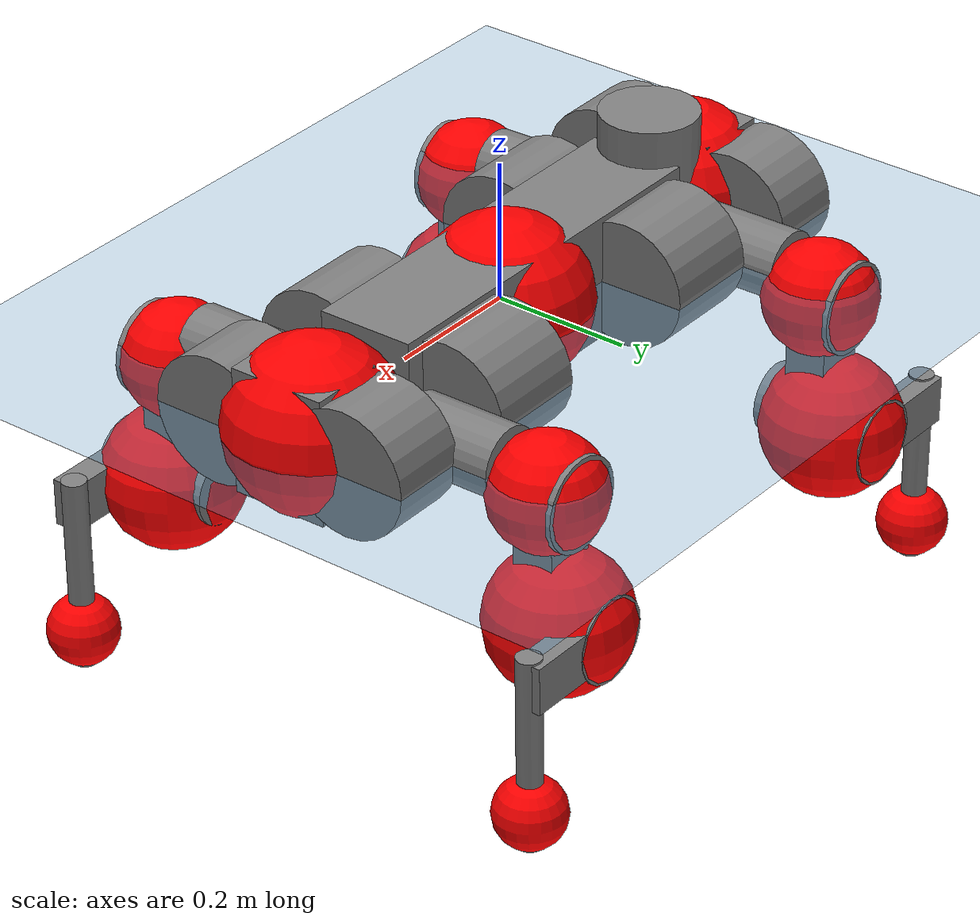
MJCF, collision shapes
<mujoco model="anymal_c">
  <compiler angle="radian" assetdir="assets" balanceinertia="true" inertiafromgeom="false"/>

  <option timestep="0.005" density="1.2" viscosity="2e-05"/>

  <size nkey="1"/>

  <visual>
    <quality shadowsize="8192"/>
    <map shadowclip="0.5"/>
  </visual>

  <default>
    <default class="/">
      <material specular="0" shininess="0.25"/>
      <geom contype="0" conaffinity="0" group="1" solref="-1000 -80"/>
      <site size="0.01 0.005 0.005" group="5"/>
      <general forcelimited="true" forcerange="-80 80" biastype="affine" gainprm="80" biasprm="0 -80 -2"/>
      <default class="anymal_c">
        <joint armature="0.01" damping="0.01" frictionloss="0.1"/>
        <default class="visual">
          <geom type="mesh" group="2"/>
          <default class="visual_zflip"/>
        </default>
        <default class="collision">
          <geom type="cylinder" group="3"/>
          <default class="foot">
            <geom size="0.03 0 0" type="sphere" condim="6" priority="1" friction="0.8 0.02 0.01" solimp="0.015 1 0.03"/>
          </default>
        </default>
      </default>
      <default class="reward_collision_sphere">
        <geom group="5" rgba="1 0 0 1"/>
      </default>
    </default>
  </default>

  <asset>
    <texture type="skybox" colorspace="auto" name="//unnamed_texture_0" builtin="gradient" rgb1="0.95 0.95 0.95" rgb2="0.95 0.95 0.95" width="100" height="600"/>
    <texture type="2d" colorspace="auto" name="texplane" builtin="checker" rgb1="0.345 0.575 0.748" rgb2="0.345 0.575 0.748" markrgb="1 1 1" width="512" height="512"/>
    <texture type="2d" colorspace="linear" name="base" file="base.png"/>
    <texture type="2d" colorspace="linear" name="top_shell" file="top_shell.png"/>
    <texture type="2d" colorspace="linear" name="bottom_shell" file="bottom_shell.png"/>
    <texture type="2d" colorspace="linear" name="remote" file="remote.png"/>
    <texture type="2d" colorspace="linear" name="hatch" file="hatch.png"/>
    <texture type="2d" colorspace="linear" name="handle" file="handle.png"/>
    <texture type="2d" colorspace="linear" name="face" file="face.png"/>
    <texture type="2d" colorspace="linear" name="battery" file="battery.png"/>
    <texture type="2d" colorspace="linear" name="lidar_cage" file="lidar_cage.png"/>
    <texture type="2d" colorspace="linear" name="depth_camera" file="depth_camera.png"/>
    <texture type="2d" colorspace="linear" name="wide_angle_camera" file="wide_angle_camera.png"/>
    <texture type="2d" colorspace="linear" name="lidar" file="lidar.png"/>
    <texture type="2d" colorspace="linear" name="drive" file="drive.png"/>
    <texture type="2d" colorspace="linear" name="hip_l" file="hip_l.png"/>
    <texture type="2d" colorspace="linear" name="shank_l" file="shank_l.png"/>
    <texture type="2d" colorspace="linear" name="foot" file="foot.png"/>
    <texture type="2d" colorspace="linear" name="thigh" file="thigh.png"/>
    <texture type="2d" colorspace="linear" name="shank_r" file="shank_r.png"/>
    <texture type="2d" colorspace="linear" name="hip_r" file="hip_r.png"/>
    <material name="MatPlane" class="/" texture="texplane" texuniform="true" texrepeat="2 2" specular="0.9" shininess="0.5"/>
    <material name="black_plastic" class="/" rgba="0.007 0.007 0.007 1"/>
    <material name="green" class="/" rgba="0.052 0.178 0.033 1"/>
    <material name="red" class="/" rgba="0.178 0.006 0.005 1"/>
    <material name="yellow" class="/" rgba="0.178 0.119 0.006 1"/>
    <material name="lwl" class="/" rgba="0.8 0.8 0.8 1"/>
    <material name="base" class="/" texture="base"/>
    <material name="top_shell" class="/" texture="top_shell"/>
    <material name="bottom_shell" class="/" texture="bottom_shell"/>
    <material name="hip_l" class="/" texture="hip_l"/>
    <material name="thigh" class="/" texture="thigh"/>
    <material name="shank_l" class="/" texture="shank_l"/>
    <material name="foot" class="/" texture="foot"/>
    <material name="hip_r" class="/" texture="hip_r"/>
    <material name="shank" class="/" texture="shank_r"/>
    <material name="hatch" class="/" texture="hatch"/>
    <material name="remote" class="/" texture="remote"/>
    <material name="handle" class="/" texture="handle"/>
    <material name="face" class="/" texture="face"/>
    <material name="depth_camera" class="/" texture="depth_camera"/>
    <material name="wide_angle_camera" class="/" texture="wide_angle_camera"/>
    <material name="battery" class="/" texture="battery"/>
    <material name="lidar_cage" class="/" texture="lidar_cage"/>
    <material name="lidar" class="/" texture="lidar"/>
    <material name="drive" class="/" texture="drive"/>
    <mesh name="base_0" class="/" file="base_0.obj"/>
    <mesh name="base_1" class="/" file="base_1.obj"/>
    <mesh name="base_2" class="/" file="base_2.obj"/>
    <mesh name="base_3" class="/" file="base_3.obj"/>
    <mesh name="base_4" class="/" file="base_4.obj"/>
    <mesh name="base_5" class="/" file="base_5.obj"/>
    <mesh name="top_shell" class="/" file="top_shell.obj"/>
    <mesh name="bottom_shell" class="/" file="bottom_shell.obj"/>
    <mesh name="remote" class="/" file="remote.obj"/>
    <mesh name="handle" class="/" file="handle.obj"/>
    <mesh name="face" class="/" file="face.obj"/>
    <mesh name="wide_angle_camera" class="/" file="wide_angle_camera.obj"/>
    <mesh name="depth_camera" class="/" file="depth_camera.obj"/>
    <mesh name="battery" class="/" file="battery.obj"/>
    <mesh name="lidar_cage" class="/" file="lidar_cage.obj"/>
    <mesh name="lidar" class="/" file="lidar.obj"/>
    <mesh name="drive" class="/" file="drive.obj"/>
    <mesh name="hip_l" class="/" file="hip_l.obj"/>
    <mesh name="thigh" class="/" file="thigh.obj"/>
    <mesh name="shank_l" class="/" file="shank_l.obj"/>
    <mesh name="foot" class="/" file="foot.obj"/>
    <mesh name="hip_r" class="/" file="hip_r.obj"/>
    <mesh name="hatch" class="/" file="hatch.obj"/>
    <mesh name="shank_r" class="/" file="shank_r.obj"/>
  </asset>

  <worldbody>
    <geom name="floor" class="/" size="100 100 0.125" type="plane" group="0" material="MatPlane"/>
    <light name="toplight_shadow" class="/" pos="0 0 5" dir="0.0990148 0.0990148 -0.990148" type="directional" ambient="0.04 0.04 0.04" diffuse="0.55 0.55 0.55" specular="0.12 0.12 0.12"/>
    <light name="toplight_fill" class="/" pos="0 0 5" dir="0.0990148 0.0990148 -0.990148" type="directional" castshadow="false" ambient="0.04 0.04 0.04" diffuse="0.3 0.3 0.3" specular="0.08 0.08 0.08"/>
    <body name="trunk" childclass="anymal_c" pos="-0.000926115 0.00863757 0.00415237" quat="0.999991 0.00171714 0.00241027 0.00318747">
      <inertial pos="0.00945386 0.013578 0.0215076" quat="0.507758 0.519079 0.470372 0.501487" mass="20.1996" diaginertia="0.462061 5.66615 0.0210622"/>
      <joint name="//unnamed_joint_0" type="free" armature="0" damping="0" frictionloss="0"/>
      <geom name="//unnamed_geom_1" class="visual" material="green" mesh="base_0"/>
      <geom name="//unnamed_geom_2" class="visual" material="yellow" mesh="base_1"/>
      <geom name="//unnamed_geom_3" class="visual" material="red" mesh="base_2"/>
      <geom name="//unnamed_geom_4" class="visual" material="black_plastic" mesh="base_3"/>
      <geom name="//unnamed_geom_5" class="visual" material="lwl" mesh="base_4"/>
      <geom name="//unnamed_geom_6" class="visual" material="base" mesh="base_5"/>
      <geom name="trunk_1" class="collision" size="0.292812 0.0706787 0.0908726" type="box"/>
      <geom name="trunk_2" class="collision" size="0.0908726 0.0732029" pos="0.191552 0.106597 0" quat="0.707107 0 0.707107 0"/>
      <geom name="trunk_3" class="collision" size="0.0908726 0.0732029" pos="-0.191552 0.106597 0" quat="0.707107 0 0.707107 0"/>
      <geom name="trunk_4" class="collision" size="0.0908726 0.0732029" pos="0.191552 -0.106597 0" quat="0.707107 0 0.707107 0"/>
      <geom name="trunk_5" class="collision" size="0.0908726 0.0732029" pos="-0.191552 -0.106597 0" quat="0.707107 0 0.707107 0"/>
      <geom name="//unnamed_geom_12" class="visual" material="top_shell" mesh="top_shell"/>
      <geom name="//unnamed_geom_13" class="visual" material="bottom_shell" mesh="bottom_shell"/>
      <geom name="//unnamed_geom_14" class="visual" material="remote" mesh="remote"/>
      <geom name="//unnamed_geom_15" class="visual" material="handle" mesh="handle"/>
      <geom name="//unnamed_geom_16" class="visual" pos="0.36505 0 0" quat="1 0 0 0" material="face" mesh="face"/>
      <geom name="trunk_6" class="collision" size="0.0555332 0.0706787 0.0908726" pos="0.413489 0 0" type="box"/>
      <geom name="//unnamed_geom_18" class="collision" size="0.0908726 0.0555332" pos="0.413489 0.106597 0" quat="0.707107 0 0.707107 0"/>
      <geom name="//unnamed_geom_19" class="collision" size="0.0908726 0.0555332" pos="0.413489 -0.106597 0" quat="0.707107 0 0.707107 0"/>
      <geom name="//unnamed_geom_20" class="visual" pos="0.406565 0 -0.016328" quat="0.965926 0 0.258819 0" material="depth_camera" mesh="depth_camera"/>
      <geom name="//unnamed_geom_21" class="visual" pos="0.451799 0 0.00936491" material="wide_angle_camera" mesh="wide_angle_camera"/>
      <geom name="//unnamed_geom_22" class="visual_zflip" pos="-0.36505 0 0" quat="0 0 0 1" material="face" mesh="face"/>
      <geom name="trunk_7" class="collision" size="0.0555332 0.0706787 0.0908726" pos="-0.413489 0 0" quat="0 0 0 1" type="box"/>
      <geom name="//unnamed_geom_24" class="collision" size="0.0908726 0.0555332" pos="-0.413489 -0.106597 0" quat="0 -0.707107 0 0.707107"/>
      <geom name="//unnamed_geom_25" class="collision" size="0.0908726 0.0555332" pos="-0.413489 0.106597 0" quat="0 -0.707107 0 0.707107"/>
      <geom name="//unnamed_geom_26" class="visual" pos="-0.406565 0 -0.016328" quat="0 -0.258819 0 0.965926" material="depth_camera" mesh="depth_camera"/>
      <geom name="//unnamed_geom_27" class="visual_zflip" pos="-0.451799 0 0.00936491" quat="0 0 0 1" material="wide_angle_camera" mesh="wide_angle_camera"/>
      <geom name="//unnamed_geom_28" class="visual" material="battery" mesh="battery"/>
      <geom name="//unnamed_geom_29" class="visual" pos="0 0.124849 0.020112" quat="0.683013 -0.183013 0.183013 0.683013" material="depth_camera" mesh="depth_camera"/>
      <geom name="//unnamed_geom_30" class="visual" pos="0 -0.124849 0.020112" quat="0.683013 0.183013 0.183013 -0.683013" material="depth_camera" mesh="depth_camera"/>
      <geom name="//unnamed_geom_31" class="visual" pos="-0.320575 0 0.04598" quat="1 0 0 0" material="lidar_cage" mesh="lidar_cage"/>
      <geom name="trunk_8" class="collision" size="0.0706787 0.0605817" pos="-0.320575 0 0.0835147"/>
      <geom name="//unnamed_geom_33" class="visual" pos="-0.320575 0.000252267 0.0889572" quat="0.707107 0 0 -0.707107" material="lidar" mesh="lidar"/>
      <geom name="//unnamed_geom_34" class="visual" pos="0.264122 0.158053 1.54773e-08" quat="0.258819 0.965926 0 0" material="drive" mesh="drive"/>
      <geom name="//unnamed_geom_35" class="visual" pos="0.264122 -0.158053 -1.54773e-08" quat="0.258819 -0.965926 0 0" material="drive" mesh="drive"/>
      <geom name="//unnamed_geom_36" class="visual" pos="-0.264122 0.158053 -1.54773e-08" quat="0 0 0.965926 -0.258819" material="drive" mesh="drive"/>
      <geom name="//unnamed_geom_37" class="visual" pos="-0.264122 -0.158053 1.54773e-08" quat="0 0 -0.965926 -0.258819" material="drive" mesh="drive"/>
      <geom name="//unnamed_geom_38" class="visual" pos="0.102161 0 0.0456672" quat="1 0 0 0" material="hatch" mesh="hatch"/>
      <geom name="//unnamed_geom_39" class="reward_collision_sphere" size="0.121163"/>
      <geom name="//unnamed_geom_40" class="reward_collision_sphere" size="0.121163" pos="0.396315 0 0"/>
      <geom name="//unnamed_geom_41" class="reward_collision_sphere" size="0.121163" pos="-0.396315 0 0"/>
      <site name="imu" pos="0.223506 0.0123728 0.0286975" size="0.010097"/>
      <camera name="track" pos="0 -3.04562 0" quat="0.707107 0.707107 0 0" mode="trackcom"/>
      <camera name="ego_camera" pos="0.396315 0 -0.0250231" quat="-0.5 -0.5 0.5 0.5"/>
      <body name="LF_HIP" pos="0.263538 0.159591 -0.00113011" quat="0.258892 0.965906 2.17556e-05 -0.000152848">
        <inertial pos="0.0498114 -0.0124568 -0.00415781" quat="-0.0807661 0.748722 -0.105461 0.649439" mass="2.7899" diaginertia="0.00300881 0.0419279 0.000304303"/>
        <joint name="LF_HAA" pos="0 0 0" axis="0.999738 0.022568 -0.00384322" range="-0.581483 0.529894" armature="0.0107363" damping="0.0118817" frictionloss="0.0951233"/>
        <geom name="//unnamed_geom_42" class="visual" pos="0 0.00091046 -0.000149542" quat="0.258819 -0.965926 0 0" material="hip_l" mesh="hip_l"/>
        <geom name="//unnamed_geom_43" class="visual" pos="0.0527539 -0.0720582 -0.0349664" quat="0.183013 -0.683013 0.683013 0.183013" material="drive" mesh="drive"/>
        <geom name="//unnamed_geom_44" class="collision" size="0.0504848 0.0706787" pos="0.052754 -0.0182125 -0.00431962" quat="-0.353553 -0.612372 0.612372 -0.353553"/>
        <body name="LF_THIGH" pos="0.0421051 -0.117482 -0.0298934" quat="0.186049 -0.686486 0.678145 0.185044">
          <inertial pos="0.0263779 -0.0139788 -0.151608" quat="0.994698 -0.0248147 -0.0733333 0.0676962" mass="2.92779" diaginertia="0.0186332 0.206479 0.000404856"/>
          <joint name="LF_HFE" pos="0 0 0" axis="0.99899 -0.0233609 -0.0383958" range="-2.96309 3.39171" armature="0.00309507" damping="0.00246489" frictionloss="0.137707"/>
          <geom name="//unnamed_geom_45" class="visual" pos="-0.0127754 -2.0131e-05 0" quat="0.707107 0 0 -0.707107" material="thigh" mesh="thigh"/>
          <geom name="//unnamed_geom_46" class="collision" size="0.0656302 0.0403878" pos="0.035228 0 0" quat="0.5 0.5 -0.5 -0.5"/>
          <geom name="//unnamed_geom_47" class="collision" size="0.0378636 0.0302909 0.142684" pos="0.026421 0 -0.088403" quat="0.707107 0 0 -0.707107" type="box"/>
          <geom name="//unnamed_geom_48" class="visual" pos="0.0883343 0 -0.17829" quat="1 0 0 0" material="drive" mesh="drive"/>
          <geom name="//unnamed_geom_49" class="collision" size="0.0504848 0.0706787" pos="0.0266852 0 -0.17829" quat="0.707107 0 0.707107 0"/>
          <geom name="//unnamed_geom_50" class="reward_collision_sphere" size="0.0807756" pos="0.0220175 0 0"/>
          <body name="LF_SHANK" pos="0.0857037 -0.00274387 -0.180159" quat="1 -0.000102669 1.50436e-05 -3.41066e-05">
            <inertial pos="0.0166095 -0.0851453 -0.0399991" quat="0.993993 -0.107766 0.0159088 -0.0105119" mass="0.629159" diaginertia="0.00600171 0.0702997 0.000119462"/>
            <joint name="LF_KFE" pos="0 0 0" axis="0.999998 -0.00118933 0.00187886" range="-3.42254 2.93365" armature="0.0140749" damping="0.0652736" frictionloss="0.0787459"/>
            <geom name="//unnamed_geom_51" class="visual" pos="-0.00416578 -0.0222122 0" quat="0.707107 0 0 -0.707107" material="shank_l" mesh="shank_l"/>
            <geom name="LF_kfe_act" class="collision" size="0.0605817 0.0201939" pos="0.017614 0 0" quat="0.5 0.5 -0.5 -0.5"/>
            <geom name="//unnamed_geom_53" class="collision" size="0.0580565 0.0340772 0.0191842" pos="0.017614 -0.0875599 0" quat="0.5 0.5 -0.5 -0.5" type="box"/>
            <geom name="//unnamed_geom_54" class="visual" pos="0.0114942 -0.141089 -0.211427" quat="0.382683 0 0 -0.92388" material="foot" mesh="foot"/>
            <geom name="LF_calf" class="collision" size="0.0176697 0.142621" pos="0.0114931 -0.133931 -0.105713" quat="0.707107 0 0 -0.707107"/>
            <geom name="LF_foot" class="foot" size="0.0350704" pos="0.0114931 -0.133931 -0.197351" quat="0.707107 0 0 -0.707107"/>
            <geom name="//unnamed_geom_57" class="reward_collision_sphere" size="0.10097" pos="-0.044035 0 0"/>
            <geom name="//unnamed_geom_58" class="reward_collision_sphere" size="0.0504848" pos="0.0114931 -0.133931 -0.197351"/>
            <site name="LF_foot" class="foot" pos="0.0114931 -0.133931 -0.197351" quat="0.707107 0 0 -0.707107" size="0.010097"/>
          </body>
        </body>
      </body>
      <body name="RF_HIP" pos="0.278028 -0.152283 0.011256" quat="0.259504 -0.965741 -3.70083e-05 -0.00121735">
        <inertial pos="0.0515876 0.0180577 0.000624779" quat="0.126756 0.664845 0.074213 0.732397" mass="3.07543" diaginertia="0.00349429 0.0403096 0.000299799"/>
        <joint name="RF_HAA" pos="0 0 0" axis="0.999336 0.0333349 -0.0147231" stiffness="0.0716509" range="-0.506939 0.494248" armature="0.0127771" damping="0.0170715" frictionloss="0.0819231"/>
        <geom name="//unnamed_geom_59" class="visual" pos="0 -0.000910452 -0.000149542" quat="0.258819 0.965926 0 0" material="hip_r" mesh="hip_r"/>
        <geom name="//unnamed_geom_60" class="visual" pos="0.052754 0.0720582 -0.0349664" quat="0.183013 0.683013 0.683013 -0.183013" material="drive" mesh="drive"/>
        <geom name="//unnamed_geom_61" class="collision" size="0.0504848 0.0706787" pos="0.052754 0.0182125 -0.00431962" quat="-0.353553 0.612372 0.612372 0.353553"/>
        <body name="RF_THIGH" pos="0.0582053 0.109414 -0.0145096" quat="0.18344 0.683091 0.682863 -0.182852">
          <inertial pos="0.020544 0.0083668 -0.166219" quat="0.989732 -0.00175179 -0.0927341 0.108757" mass="2.96435" diaginertia="0.0175038 0.242447 0.000397024"/>
          <joint name="RF_HFE" pos="0 0 0" axis="0.999996 -0.00281806 -0.000808761" range="-3.15123 3.0465" armature="0.0155585" damping="0" frictionloss="0.141524"/>
          <geom name="//unnamed_geom_62" class="visual" pos="-0.0127754 -2.0131e-05 0" quat="0.707107 0 0 -0.707107" material="thigh" mesh="thigh"/>
          <geom name="//unnamed_geom_63" class="collision" size="0.0656302 0.0403878" pos="0.035228 0 0" quat="0.5 0.5 0.5 0.5"/>
          <geom name="//unnamed_geom_64" class="collision" size="0.0378636 0.0302909 0.142684" pos="0.026421 0 -0.088403" quat="0.707107 0 0 0.707107" type="box"/>
          <geom name="//unnamed_geom_65" class="visual" pos="0.0883343 0 -0.17829" quat="1 0 0 0" material="drive" mesh="drive"/>
          <geom name="//unnamed_geom_66" class="collision" size="0.0504848 0.0706787" pos="0.0266852 0 -0.17829" quat="0.707107 0 0.707107 0"/>
          <geom name="//unnamed_geom_67" class="reward_collision_sphere" size="0.0807756" pos="0.0220175 0 0"/>
          <body name="RF_SHANK" pos="0.0909681 -0.00477959 -0.190204" quat="0.999999 -0.000588548 0.000271595 -0.0012364">
            <inertial pos="0.0128852 0.084808 -0.0507465" quat="0.989987 0.133371 -0.0102049 0.0450907" mass="0.497794" diaginertia="0.00473649 0.0553484 9.72438e-05"/>
            <joint name="RF_KFE" pos="0 0 0" axis="0.999994 0.00203685 0.00294747" range="-3.22983 3.06846" armature="0.0108888" damping="0.0744959" frictionloss="0.125802"/>
            <geom name="//unnamed_geom_68" class="visual" pos="-0.00416576 0.0222121 0" quat="0.707107 0 0 0.707107" material="shank" mesh="shank_r"/>
            <geom name="RF_kfe_act" class="collision" size="0.0605817 0.0201939" pos="0.017614 0 0" quat="0.5 0.5 0.5 0.5"/>
            <geom name="//unnamed_geom_70" class="collision" size="0.0580565 0.0340772 0.0191842" pos="0.017614 0.0875599 0" quat="0.5 0.5 0.5 0.5" type="box"/>
            <geom name="//unnamed_geom_71" class="visual" pos="0.0114921 0.141089 -0.211427" quat="0.382683 0 0 0.92388" material="foot" mesh="foot"/>
            <geom name="RF_calf" class="collision" size="0.0176697 0.142621" pos="0.0114931 0.133931 -0.105713" quat="0.707107 0 0 0.707107"/>
            <geom name="RF_foot" class="foot" size="0.0460233" pos="0.0114931 0.133931 -0.197351" quat="0.707107 0 0 0.707107"/>
            <geom name="//unnamed_geom_74" class="reward_collision_sphere" size="0.10097" pos="-0.044035 0 0"/>
            <geom name="//unnamed_geom_75" class="reward_collision_sphere" size="0.0504848" pos="0.0114931 0.133931 -0.197351"/>
            <site name="RF_foot" class="foot" pos="0.0114931 0.133931 -0.197351" quat="0.707107 0 0 0.707107" size="0.010097"/>
          </body>
        </body>
      </body>
      <body name="LH_HIP" pos="-0.261645 0.151842 -0.00976114" quat="0.000101948 0.000157205 0.965895 -0.258933">
        <inertial pos="0.0475273 0.0260466 -0.013107" quat="0.132996 0.686885 0.11624 0.704975" mass="3.59297" diaginertia="0.00340886 0.0464349 0.000304802"/>
        <joint name="LH_HAA" pos="0 0 0" axis="0.999619 -0.020127 -0.0188842" range="-0.712677 0.81454" armature="0.0114685" damping="0.00503625" frictionloss="0.0506335"/>
        <geom name="//unnamed_geom_76" class="visual" pos="0 -0.000910452 -0.000149542" quat="-0.258819 -0.965926 0 0" material="hip_r" mesh="hip_r"/>
        <geom name="//unnamed_geom_77" class="visual" pos="0.052754 0.0720582 -0.0349664" quat="0.183013 0.683013 0.683013 -0.183013" material="drive" mesh="drive"/>
        <geom name="//unnamed_geom_78" class="collision" size="0.0504848 0.0706787" pos="0.052754 0.0182125 -0.00431962" quat="-0.353553 0.612372 0.612372 0.353553"/>
        <body name="LH_THIGH" pos="0.0502737 0.117056 -0.0294831" quat="0.184578 0.681989 0.685108 -0.177336">
          <inertial pos="0.0276004 -0.0147274 -0.158287" quat="0.988079 -0.029195 -0.0749267 0.131275" mass="3.65269" diaginertia="0.0172634 0.219613 0.000338024"/>
          <joint name="LH_HFE" pos="0 0 0" axis="0.997559 -0.064601 -0.0264971" stiffness="0.00325423" range="-3.11602 3.13236" armature="0.0057417" damping="0" frictionloss="0.137885"/>
          <geom name="//unnamed_geom_79" class="visual" pos="-0.0127754 -2.0131e-05 0" quat="0.707107 0 0 -0.707107" material="thigh" mesh="thigh"/>
          <geom name="//unnamed_geom_80" class="collision" size="0.0656302 0.0403878" pos="0.035228 0 0" quat="0.5 0.5 -0.5 -0.5"/>
          <geom name="//unnamed_geom_81" class="collision" size="0.0378636 0.0302909 0.142684" pos="0.026421 0 -0.088403" quat="0.707107 0 0 -0.707107" type="box"/>
          <geom name="//unnamed_geom_82" class="visual" pos="0.0883343 0 -0.17829" quat="1 0 0 0" material="drive" mesh="drive"/>
          <geom name="//unnamed_geom_83" class="collision" size="0.0504848 0.0706787" pos="0.0266852 0 -0.17829" quat="0.707107 0 0.707107 0"/>
          <geom name="//unnamed_geom_84" class="reward_collision_sphere" size="0.0807756" pos="0.0220175 0 0"/>
          <body name="LH_SHANK" pos="0.0941774 0.000256662 -0.18746" quat="0.999994 -0.00282414 -5.5587e-05 0.00209222">
            <inertial pos="0.0057973 0.0824668 -0.0499203" quat="0.992897 0.115957 -0.0010441 0.0266149" mass="0.621001" diaginertia="0.00586059 0.0825545 0.000117815"/>
            <joint name="LH_KFE" pos="0 0 0" axis="0.999936 -0.00363476 -0.0107322" range="-3.41348 3.16189" armature="0.0029598" damping="0" frictionloss="0.142888"/>
            <geom name="//unnamed_geom_85" class="visual" pos="-0.00416576 0.0222121 0" quat="-0.707107 0 0 -0.707107" material="shank" mesh="shank_r"/>
            <geom name="LH_kfe_act" class="collision" size="0.0605817 0.0201939" pos="0.017614 0 0" quat="0.5 0.5 -0.5 -0.5"/>
            <geom name="//unnamed_geom_87" class="collision" size="0.0580565 0.0340772 0.0191842" pos="0.017614 0.0875599 0" quat="0.5 0.5 -0.5 -0.5" type="box"/>
            <geom name="//unnamed_geom_88" class="visual" pos="0.0114921 0.141089 -0.211427" quat="-0.382683 0 0 -0.92388" material="foot" mesh="foot"/>
            <geom name="LH_calf" class="collision" size="0.0176697 0.142621" pos="0.0114931 0.133931 -0.105713" quat="0.707107 0 0 -0.707107"/>
            <geom name="LH_foot" class="foot" size="0.0330888" pos="0.0114931 0.133931 -0.197351" quat="0.707107 0 0 -0.707107"/>
            <geom name="//unnamed_geom_91" class="reward_collision_sphere" size="0.10097" pos="-0.044035 0 0"/>
            <geom name="//unnamed_geom_92" class="reward_collision_sphere" size="0.0504848" pos="0.0114931 0.133931 -0.197351"/>
            <site name="LH_foot" class="foot" pos="0.0114931 0.133931 -0.197351" quat="0.707107 0 0 -0.707107" size="0.010097"/>
          </body>
        </body>
      </body>
      <body name="RH_HIP" pos="-0.250489 -0.158971 -0.00354731" quat="-0.00247329 0.000111251 -0.964128 -0.265424">
        <inertial pos="0.0497964 -0.0191895 -0.00388541" quat="-0.12744 0.707036 -0.132227 0.682916" mass="3.06234" diaginertia="0.00337187 0.04135 0.000278393"/>
        <joint name="RH_HAA" pos="0 0 0" axis="0.999999 -0.00162601 0.000436986" range="-0.669561 0.314148" armature="0.00388732" damping="0.0262267" frictionloss="0.0608791"/>
        <geom name="//unnamed_geom_93" class="visual" pos="0 0.00091046 -0.000149542" quat="-0.258819 0.965926 0 0" material="hip_l" mesh="hip_l"/>
        <geom name="//unnamed_geom_94" class="visual" pos="0.0527539 -0.0720582 -0.0349664" quat="-0.183013 0.683013 -0.683013 -0.183013" material="drive" mesh="drive"/>
        <geom name="//unnamed_geom_95" class="collision" size="0.0504848 0.0706787" pos="0.052754 -0.0182125 -0.00431962" quat="0.353553 0.612372 -0.612372 0.353553"/>
        <body name="RH_THIGH" pos="0.061679 -0.120634 -0.0217397" quat="-0.180361 0.683292 -0.683431 -0.183044">
          <inertial pos="0.0285047 0.00980467 -0.153128" quat="0.992286 -0.0105067 -0.08571 0.0889442" mass="2.8901" diaginertia="0.0156279 0.247126 0.000426825"/>
          <joint name="RH_HFE" pos="0 0 0" axis="0.999972 -0.00710943 0.00220185" range="-3.1377 2.85527" armature="0.0169109" damping="0" frictionloss="0.102728"/>
          <geom name="//unnamed_geom_96" class="visual" pos="-0.0127754 -2.0131e-05 0" quat="0.707107 0 0 -0.707107" material="thigh" mesh="thigh"/>
          <geom name="//unnamed_geom_97" class="collision" size="0.0656302 0.0403878" pos="0.035228 0 0" quat="0.5 0.5 0.5 0.5"/>
          <geom name="//unnamed_geom_98" class="collision" size="0.0378636 0.0302909 0.142684" pos="0.026421 0 -0.088403" quat="0.707107 0 0 0.707107" type="box"/>
          <geom name="//unnamed_geom_99" class="visual" pos="0.0883343 0 -0.17829" quat="1 0 0 0" material="drive" mesh="drive"/>
          <geom name="//unnamed_geom_100" class="collision" size="0.0504848 0.0706787" pos="0.0266852 0 -0.17829" quat="0.707107 0 0.707107 0"/>
          <geom name="//unnamed_geom_101" class="reward_collision_sphere" size="0.0807756" pos="0.0220175 0 0"/>
          <body name="RH_SHANK" pos="0.080812 -0.000248482 -0.184147" quat="1 -0.000208063 0.000389054 -1.67937e-05">
            <inertial pos="0.0122793 -0.094724 -0.0525577" quat="0.993088 -0.11364 0.001477 -0.0293353" mass="0.547856" diaginertia="0.00519837 0.0705054 0.000109798"/>
            <joint name="RH_KFE" pos="0 0 0" axis="0.998766 -0.0226196 0.0442092" range="-3.37502 3.01162" armature="0.0113012" damping="0.00710175" frictionloss="0.0646689"/>
            <geom name="//unnamed_geom_102" class="visual" pos="-0.00416578 -0.0222122 0" quat="0.707107 0 0 -0.707107" material="shank_l" mesh="shank_l"/>
            <geom name="RH_kfe_act" class="collision" size="0.0605817 0.0201939" pos="0.017614 0 0" quat="0.5 0.5 0.5 0.5"/>
            <geom name="//unnamed_geom_104" class="collision" size="0.0580565 0.0340772 0.0191842" pos="0.017614 -0.0875599 0" quat="0.5 0.5 0.5 0.5" type="box"/>
            <geom name="//unnamed_geom_105" class="visual" pos="0.0114942 -0.141089 -0.211427" quat="0.382683 0 0 -0.92388" material="foot" mesh="foot"/>
            <geom name="RH_calf" class="collision" size="0.0176697 0.142621" pos="0.0114931 -0.133931 -0.105713" quat="0.707107 0 0 0.707107"/>
            <geom name="RH_foot" class="foot" size="0.0139849" pos="0.0114931 -0.133931 -0.197351" quat="0.707107 0 0 0.707107"/>
            <geom name="//unnamed_geom_108" class="reward_collision_sphere" size="0.10097" pos="-0.044035 0 0"/>
            <geom name="//unnamed_geom_109" class="reward_collision_sphere" size="0.0504848" pos="0.0114931 -0.133931 -0.197351"/>
            <site name="RH_foot" class="foot" pos="0.0114931 -0.133931 -0.197351" quat="0.707107 0 0 0.707107" size="0.010097"/>
          </body>
        </body>
      </body>
    </body>
  </worldbody>

  <contact>
    <pair class="/" geom1="floor" geom2="LF_foot" name="//unnamed_contact_0"/>
    <pair class="/" geom1="floor" geom2="RF_foot" name="//unnamed_contact_1"/>
    <pair class="/" geom1="floor" geom2="LH_foot" name="//unnamed_contact_2"/>
    <pair class="/" geom1="floor" geom2="RH_foot" name="//unnamed_contact_3"/>
  </contact>

  <actuator>
    <general name="LF_HAA" class="/" joint="LF_HAA" forcerange="-62.1406 62.1406" gainprm="75.2886" biasprm="0 -75.2886 -2.01961"/>
    <general name="LF_HFE" class="/" joint="LF_HFE" forcerange="-83.6718 83.6718" gainprm="75.2886" biasprm="0 -75.2886 -2.01961"/>
    <general name="LF_KFE" class="/" joint="LF_KFE" forcerange="-81.5317 81.5317" gainprm="75.2886" biasprm="0 -75.2886 -2.01961"/>
    <general name="RF_HAA" class="/" joint="RF_HAA" forcerange="-101.157 101.157" gainprm="75.2886" biasprm="0 -75.2886 -2.01961"/>
    <general name="RF_HFE" class="/" joint="RF_HFE" forcerange="-81.2861 81.2861" gainprm="75.2886" biasprm="0 -75.2886 -2.01961"/>
    <general name="RF_KFE" class="/" joint="RF_KFE" forcerange="-109.535 109.535" gainprm="75.2886" biasprm="0 -75.2886 -2.01961"/>
    <general name="LH_HAA" class="/" joint="LH_HAA" forcerange="-94.1148 94.1148" gainprm="75.2886" biasprm="0 -75.2886 -2.01961"/>
    <general name="LH_HFE" class="/" joint="LH_HFE" forcerange="-80.7876 80.7876" gainprm="75.2886" biasprm="0 -75.2886 -2.01961"/>
    <general name="LH_KFE" class="/" joint="LH_KFE" forcerange="-69.9393 69.9393" gainprm="75.2886" biasprm="0 -75.2886 -2.01961"/>
    <general name="RH_HAA" class="/" joint="RH_HAA" forcerange="-100.106 100.106" gainprm="75.2886" biasprm="0 -75.2886 -2.01961"/>
    <general name="RH_HFE" class="/" joint="RH_HFE" forcerange="-65.5721 65.5721" gainprm="75.2886" biasprm="0 -75.2886 -2.01961"/>
    <general name="RH_KFE" class="/" joint="RH_KFE" forcerange="-44.3389 44.3389" gainprm="75.2886" biasprm="0 -75.2886 -2.01961"/>
  </actuator>

  <sensor>
    <gyro site="imu" name="imu_angular_velocity"/>
    <velocimeter site="imu" name="imu_linear_velocity"/>
    <framelinvel objtype="site" objname="LF_foot" name="LF_foot_global_linear_velocity"/>
    <framelinvel objtype="site" objname="RF_foot" name="RF_foot_global_linear_velocity"/>
    <framelinvel objtype="site" objname="LH_foot" name="LH_foot_global_linear_velocity"/>
    <framelinvel objtype="site" objname="RH_foot" name="RH_foot_global_linear_velocity"/>
  </sensor>

  <keyframe>
    <key name="home" qpos="0 0 0.55 1 0 0 0 0 0.4 -0.8 0 -0.4 0.8 0 -0.4 0.8 0 0.4 -0.8"/>
  </keyframe>
</mujoco>
